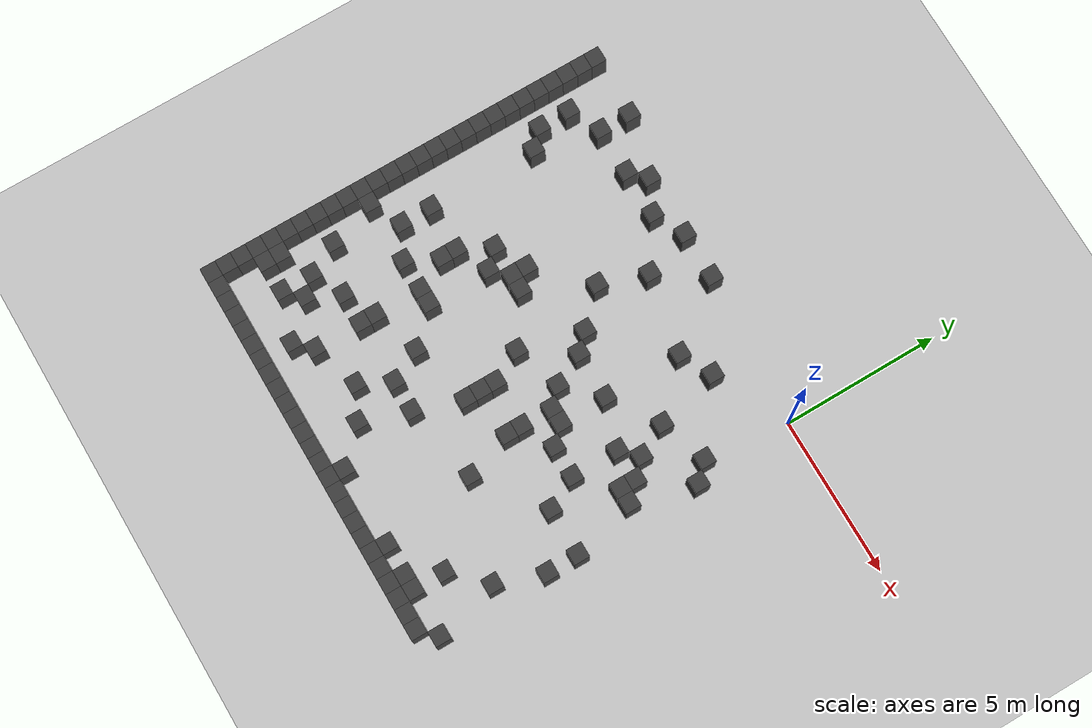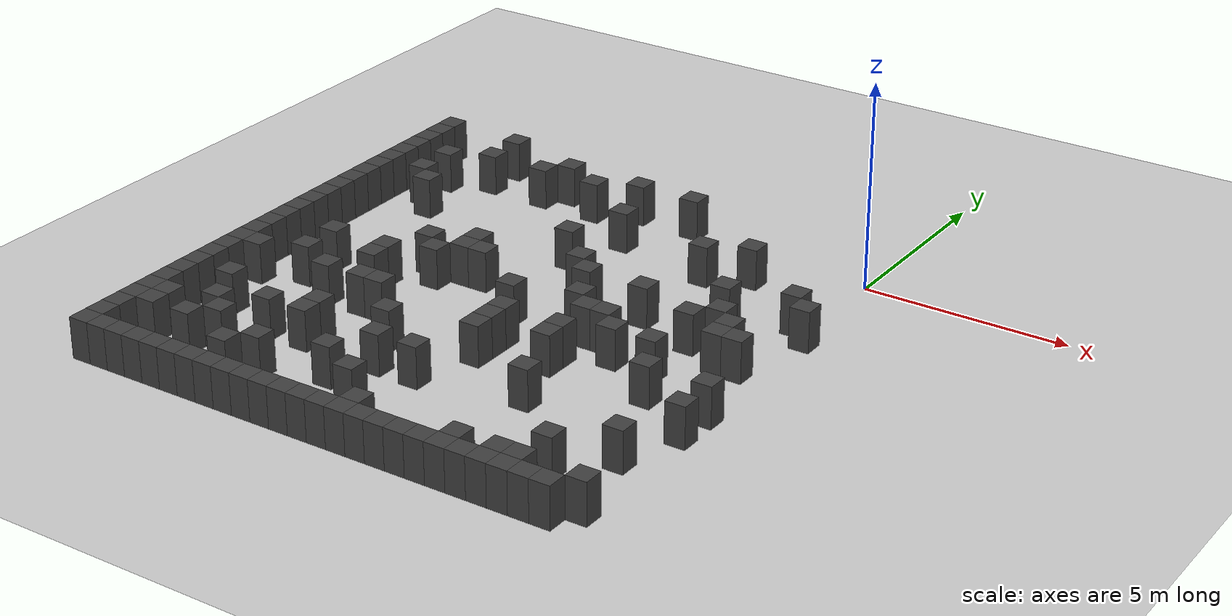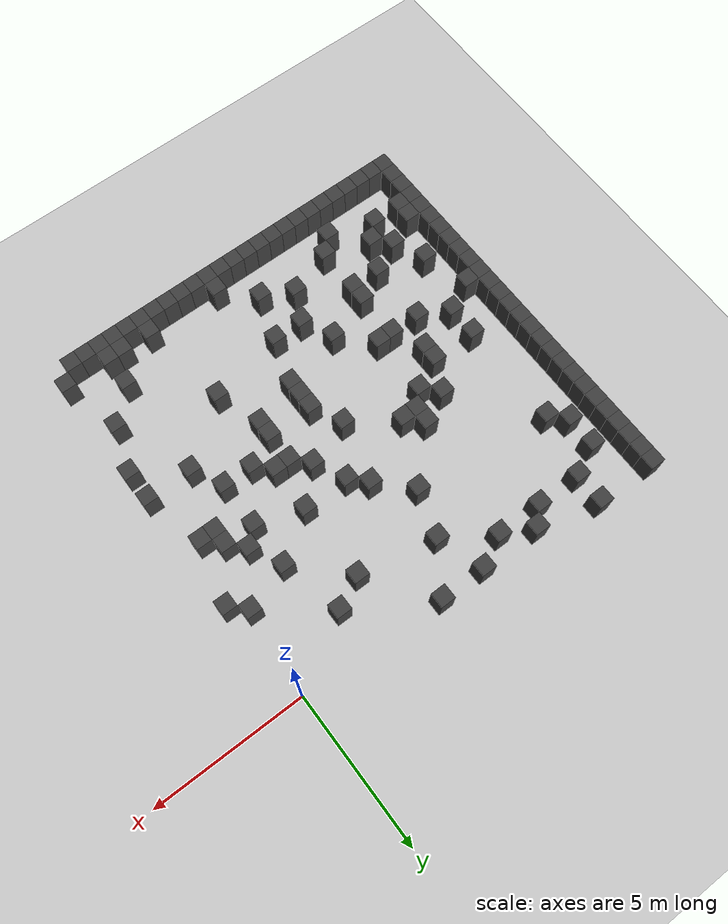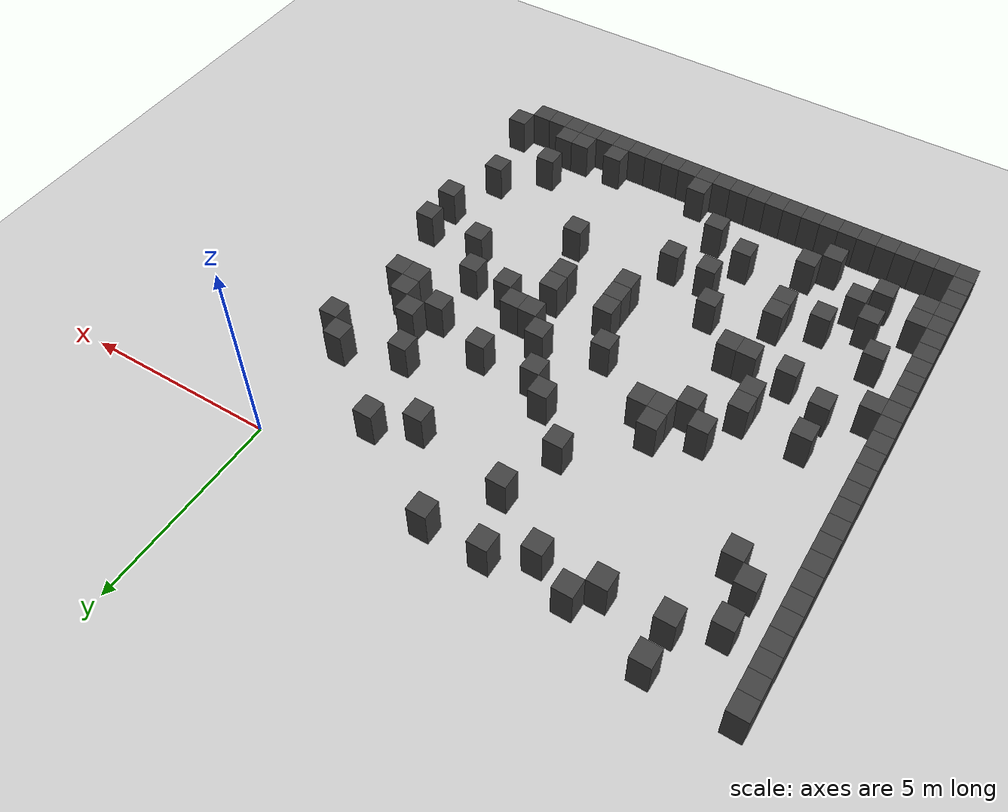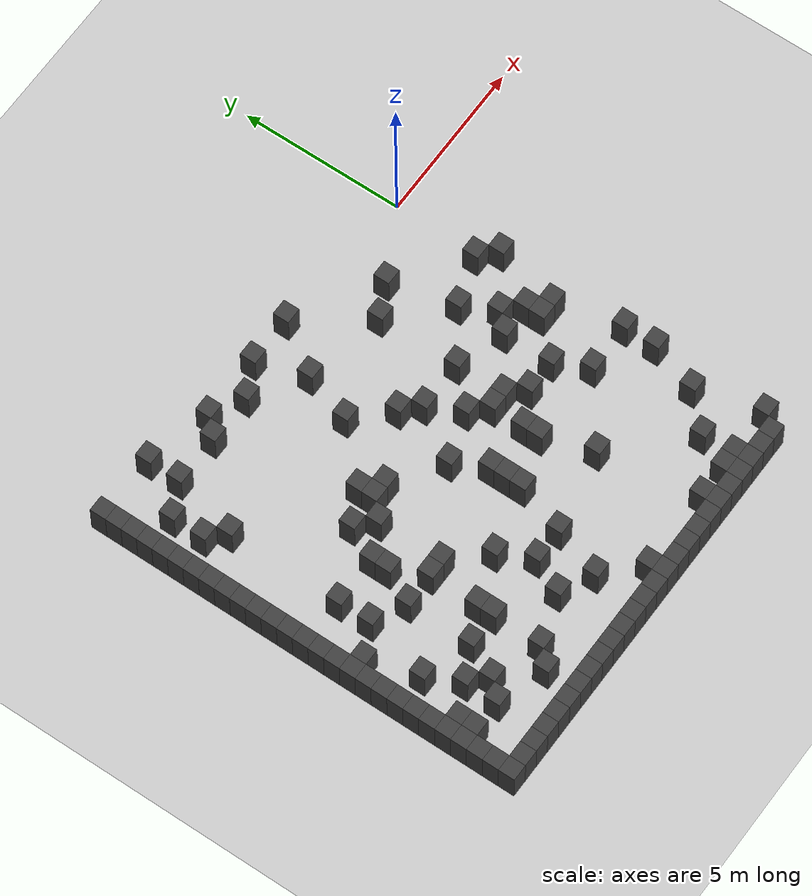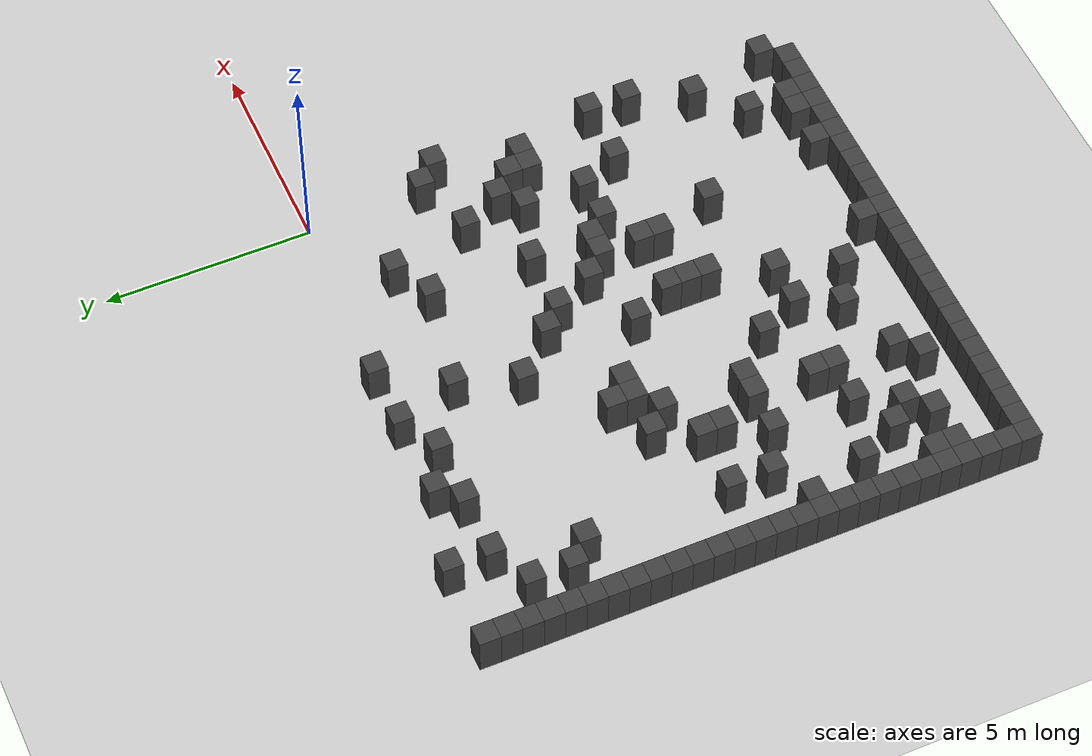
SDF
<sdf version="1.7">
 <world name="map_2627">
  <model name="ground_plane">
   <static>true</static>
   <link name="link">
    <collision name="collision">
     <geometry><plane><normal>0 0 1</normal><size>200 200</size></plane></geometry>
    </collision>
    <visual name="visual">
     <geometry><plane><normal>0 0 1</normal><size>200 200</size></plane></geometry>
     <material><ambient>0.8 0.8 0.8 1</ambient><diffuse>0.8 0.8 0.8 1</diffuse></material>
    </visual>
   </link>
  </model>
  <model name="maze_environment">
   <static>true</static>
   <link name="wall_245">
    <pose>-12.250 0.750 0.500 0 0 0</pose>
    <collision name="col"><geometry><box><size>0.5 0.5 1.0</size></box></geometry></collision>
    <visual name="vis">
     <geometry><box><size>0.5 0.5 1.0</size></box></geometry>
     <material><ambient>0.15 0.15 0.15 1</ambient><diffuse>0.25 0.25 0.25 1</diffuse></material>
    </visual>
   </link>
   <link name="wall_246">
    <pose>-10.250 0.750 0.500 0 0 0</pose>
    <collision name="col"><geometry><box><size>0.5 0.5 1.0</size></box></geometry></collision>
    <visual name="vis">
     <geometry><box><size>0.5 0.5 1.0</size></box></geometry>
     <material><ambient>0.15 0.15 0.15 1</ambient><diffuse>0.25 0.25 0.25 1</diffuse></material>
    </visual>
   </link>
   <link name="wall_258">
    <pose>-12.250 0.250 0.500 0 0 0</pose>
    <collision name="col"><geometry><box><size>0.5 0.5 1.0</size></box></geometry></collision>
    <visual name="vis">
     <geometry><box><size>0.5 0.5 1.0</size></box></geometry>
     <material><ambient>0.15 0.15 0.15 1</ambient><diffuse>0.25 0.25 0.25 1</diffuse></material>
    </visual>
   </link>
   <link name="wall_259">
    <pose>-8.250 0.250 0.500 0 0 0</pose>
    <collision name="col"><geometry><box><size>0.5 0.5 1.0</size></box></geometry></collision>
    <visual name="vis">
     <geometry><box><size>0.5 0.5 1.0</size></box></geometry>
     <material><ambient>0.15 0.15 0.15 1</ambient><diffuse>0.25 0.25 0.25 1</diffuse></material>
    </visual>
   </link>
   <link name="wall_260">
    <pose>-6.250 0.250 0.500 0 0 0</pose>
    <collision name="col"><geometry><box><size>0.5 0.5 1.0</size></box></geometry></collision>
    <visual name="vis">
     <geometry><box><size>0.5 0.5 1.0</size></box></geometry>
     <material><ambient>0.15 0.15 0.15 1</ambient><diffuse>0.25 0.25 0.25 1</diffuse></material>
    </visual>
   </link>
   <link name="wall_261">
    <pose>-4.750 0.250 0.500 0 0 0</pose>
    <collision name="col"><geometry><box><size>0.5 0.5 1.0</size></box></geometry></collision>
    <visual name="vis">
     <geometry><box><size>0.5 0.5 1.0</size></box></geometry>
     <material><ambient>0.15 0.15 0.15 1</ambient><diffuse>0.25 0.25 0.25 1</diffuse></material>
    </visual>
   </link>
   <link name="wall_266">
    <pose>-12.250 -0.250 0.500 0 0 0</pose>
    <collision name="col"><geometry><box><size>0.5 0.5 1.0</size></box></geometry></collision>
    <visual name="vis">
     <geometry><box><size>0.5 0.5 1.0</size></box></geometry>
     <material><ambient>0.15 0.15 0.15 1</ambient><diffuse>0.25 0.25 0.25 1</diffuse></material>
    </visual>
   </link>
   <link name="wall_267">
    <pose>-10.250 -0.250 0.500 0 0 0</pose>
    <collision name="col"><geometry><box><size>0.5 0.5 1.0</size></box></geometry></collision>
    <visual name="vis">
     <geometry><box><size>0.5 0.5 1.0</size></box></geometry>
     <material><ambient>0.15 0.15 0.15 1</ambient><diffuse>0.25 0.25 0.25 1</diffuse></material>
    </visual>
   </link>
   <link name="wall_268">
    <pose>-8.750 -0.250 0.500 0 0 0</pose>
    <collision name="col"><geometry><box><size>0.5 0.5 1.0</size></box></geometry></collision>
    <visual name="vis">
     <geometry><box><size>0.5 0.5 1.0</size></box></geometry>
     <material><ambient>0.15 0.15 0.15 1</ambient><diffuse>0.25 0.25 0.25 1</diffuse></material>
    </visual>
   </link>
   <link name="wall_269">
    <pose>-7.250 -0.250 0.500 0 0 0</pose>
    <collision name="col"><geometry><box><size>0.5 0.5 1.0</size></box></geometry></collision>
    <visual name="vis">
     <geometry><box><size>0.5 0.5 1.0</size></box></geometry>
     <material><ambient>0.15 0.15 0.15 1</ambient><diffuse>0.25 0.25 0.25 1</diffuse></material>
    </visual>
   </link>
   <link name="wall_274">
    <pose>-12.250 -0.750 0.500 0 0 0</pose>
    <collision name="col"><geometry><box><size>0.5 0.5 1.0</size></box></geometry></collision>
    <visual name="vis">
     <geometry><box><size>0.5 0.5 1.0</size></box></geometry>
     <material><ambient>0.15 0.15 0.15 1</ambient><diffuse>0.25 0.25 0.25 1</diffuse></material>
    </visual>
   </link>
   <link name="wall_275">
    <pose>-11.250 -0.750 0.500 0 0 0</pose>
    <collision name="col"><geometry><box><size>0.5 0.5 1.0</size></box></geometry></collision>
    <visual name="vis">
     <geometry><box><size>0.5 0.5 1.0</size></box></geometry>
     <material><ambient>0.15 0.15 0.15 1</ambient><diffuse>0.25 0.25 0.25 1</diffuse></material>
    </visual>
   </link>
   <link name="wall_279">
    <pose>-12.250 -1.250 0.500 0 0 0</pose>
    <collision name="col"><geometry><box><size>0.5 0.5 1.0</size></box></geometry></collision>
    <visual name="vis">
     <geometry><box><size>0.5 0.5 1.0</size></box></geometry>
     <material><ambient>0.15 0.15 0.15 1</ambient><diffuse>0.25 0.25 0.25 1</diffuse></material>
    </visual>
   </link>
   <link name="wall_280">
    <pose>-5.750 -1.250 0.500 0 0 0</pose>
    <collision name="col"><geometry><box><size>0.5 0.5 1.0</size></box></geometry></collision>
    <visual name="vis">
     <geometry><box><size>0.5 0.5 1.0</size></box></geometry>
     <material><ambient>0.15 0.15 0.15 1</ambient><diffuse>0.25 0.25 0.25 1</diffuse></material>
    </visual>
   </link>
   <link name="wall_281">
    <pose>-2.250 -1.250 0.500 0 0 0</pose>
    <collision name="col"><geometry><box><size>0.5 0.5 1.0</size></box></geometry></collision>
    <visual name="vis">
     <geometry><box><size>0.5 0.5 1.0</size></box></geometry>
     <material><ambient>0.15 0.15 0.15 1</ambient><diffuse>0.25 0.25 0.25 1</diffuse></material>
    </visual>
   </link>
   <link name="wall_287">
    <pose>-12.250 -1.750 0.500 0 0 0</pose>
    <collision name="col"><geometry><box><size>0.5 0.5 1.0</size></box></geometry></collision>
    <visual name="vis">
     <geometry><box><size>0.5 0.5 1.0</size></box></geometry>
     <material><ambient>0.15 0.15 0.15 1</ambient><diffuse>0.25 0.25 0.25 1</diffuse></material>
    </visual>
   </link>
   <link name="wall_288">
    <pose>-11.250 -1.750 0.500 0 0 0</pose>
    <collision name="col"><geometry><box><size>0.5 0.5 1.0</size></box></geometry></collision>
    <visual name="vis">
     <geometry><box><size>0.5 0.5 1.0</size></box></geometry>
     <material><ambient>0.15 0.15 0.15 1</ambient><diffuse>0.25 0.25 0.25 1</diffuse></material>
    </visual>
   </link>
   <link name="wall_289">
    <pose>-3.250 -1.750 0.500 0 0 0</pose>
    <collision name="col"><geometry><box><size>0.5 0.5 1.0</size></box></geometry></collision>
    <visual name="vis">
     <geometry><box><size>0.5 0.5 1.0</size></box></geometry>
     <material><ambient>0.15 0.15 0.15 1</ambient><diffuse>0.25 0.25 0.25 1</diffuse></material>
    </visual>
   </link>
   <link name="wall_294">
    <pose>-12.250 -2.250 0.500 0 0 0</pose>
    <collision name="col"><geometry><box><size>0.5 0.5 1.0</size></box></geometry></collision>
    <visual name="vis">
     <geometry><box><size>0.5 0.5 1.0</size></box></geometry>
     <material><ambient>0.15 0.15 0.15 1</ambient><diffuse>0.25 0.25 0.25 1</diffuse></material>
    </visual>
   </link>
   <link name="wall_295">
    <pose>-10.750 -2.250 0.500 0 0 0</pose>
    <collision name="col"><geometry><box><size>0.5 0.5 1.0</size></box></geometry></collision>
    <visual name="vis">
     <geometry><box><size>0.5 0.5 1.0</size></box></geometry>
     <material><ambient>0.15 0.15 0.15 1</ambient><diffuse>0.25 0.25 0.25 1</diffuse></material>
    </visual>
   </link>
   <link name="wall_301">
    <pose>-12.250 -2.750 0.500 0 0 0</pose>
    <collision name="col"><geometry><box><size>0.5 0.5 1.0</size></box></geometry></collision>
    <visual name="vis">
     <geometry><box><size>0.5 0.5 1.0</size></box></geometry>
     <material><ambient>0.15 0.15 0.15 1</ambient><diffuse>0.25 0.25 0.25 1</diffuse></material>
    </visual>
   </link>
   <link name="wall_302">
    <pose>-6.250 -2.750 0.500 0 0 0</pose>
    <collision name="col"><geometry><box><size>0.5 0.5 1.0</size></box></geometry></collision>
    <visual name="vis">
     <geometry><box><size>0.5 0.5 1.0</size></box></geometry>
     <material><ambient>0.15 0.15 0.15 1</ambient><diffuse>0.25 0.25 0.25 1</diffuse></material>
    </visual>
   </link>
   <link name="wall_303">
    <pose>-0.250 -2.750 0.500 0 0 0</pose>
    <collision name="col"><geometry><box><size>0.5 0.5 1.0</size></box></geometry></collision>
    <visual name="vis">
     <geometry><box><size>0.5 0.5 1.0</size></box></geometry>
     <material><ambient>0.15 0.15 0.15 1</ambient><diffuse>0.25 0.25 0.25 1</diffuse></material>
    </visual>
   </link>
   <link name="wall_307">
    <pose>-12.250 -3.250 0.500 0 0 0</pose>
    <collision name="col"><geometry><box><size>0.5 0.5 1.0</size></box></geometry></collision>
    <visual name="vis">
     <geometry><box><size>0.5 0.5 1.0</size></box></geometry>
     <material><ambient>0.15 0.15 0.15 1</ambient><diffuse>0.25 0.25 0.25 1</diffuse></material>
    </visual>
   </link>
   <link name="wall_308">
    <pose>-1.750 -3.250 0.500 0 0 0</pose>
    <collision name="col"><geometry><box><size>0.5 0.5 1.0</size></box></geometry></collision>
    <visual name="vis">
     <geometry><box><size>0.5 0.5 1.0</size></box></geometry>
     <material><ambient>0.15 0.15 0.15 1</ambient><diffuse>0.25 0.25 0.25 1</diffuse></material>
    </visual>
   </link>
   <link name="wall_309">
    <pose>0.250 -3.250 0.500 0 0 0</pose>
    <collision name="col"><geometry><box><size>0.5 0.5 1.0</size></box></geometry></collision>
    <visual name="vis">
     <geometry><box><size>0.5 0.5 1.0</size></box></geometry>
     <material><ambient>0.15 0.15 0.15 1</ambient><diffuse>0.25 0.25 0.25 1</diffuse></material>
    </visual>
   </link>
   <link name="wall_314">
    <pose>-12.250 -3.750 0.500 0 0 0</pose>
    <collision name="col"><geometry><box><size>0.5 0.5 1.0</size></box></geometry></collision>
    <visual name="vis">
     <geometry><box><size>0.5 0.5 1.0</size></box></geometry>
     <material><ambient>0.15 0.15 0.15 1</ambient><diffuse>0.25 0.25 0.25 1</diffuse></material>
    </visual>
   </link>
   <link name="wall_315">
    <pose>-5.250 -3.750 0.500 0 0 0</pose>
    <collision name="col"><geometry><box><size>0.5 0.5 1.0</size></box></geometry></collision>
    <visual name="vis">
     <geometry><box><size>0.5 0.5 1.0</size></box></geometry>
     <material><ambient>0.15 0.15 0.15 1</ambient><diffuse>0.25 0.25 0.25 1</diffuse></material>
    </visual>
   </link>
   <link name="wall_320">
    <pose>-12.250 -4.250 0.500 0 0 0</pose>
    <collision name="col"><geometry><box><size>0.5 0.5 1.0</size></box></geometry></collision>
    <visual name="vis">
     <geometry><box><size>0.5 0.5 1.0</size></box></geometry>
     <material><ambient>0.15 0.15 0.15 1</ambient><diffuse>0.25 0.25 0.25 1</diffuse></material>
    </visual>
   </link>
   <link name="wall_321">
    <pose>-7.750 -4.250 0.500 0 0 0</pose>
    <collision name="col"><geometry><box><size>0.5 0.5 1.0</size></box></geometry></collision>
    <visual name="vis">
     <geometry><box><size>0.5 0.5 1.0</size></box></geometry>
     <material><ambient>0.15 0.15 0.15 1</ambient><diffuse>0.25 0.25 0.25 1</diffuse></material>
    </visual>
   </link>
   <link name="wall_322">
    <pose>-4.750 -4.250 0.500 0 0 0</pose>
    <collision name="col"><geometry><box><size>0.5 0.5 1.0</size></box></geometry></collision>
    <visual name="vis">
     <geometry><box><size>0.5 0.5 1.0</size></box></geometry>
     <material><ambient>0.15 0.15 0.15 1</ambient><diffuse>0.25 0.25 0.25 1</diffuse></material>
    </visual>
   </link>
   <link name="wall_323">
    <pose>-3.250 -4.250 0.500 0 0 0</pose>
    <collision name="col"><geometry><box><size>0.5 0.5 1.0</size></box></geometry></collision>
    <visual name="vis">
     <geometry><box><size>0.5 0.5 1.0</size></box></geometry>
     <material><ambient>0.15 0.15 0.15 1</ambient><diffuse>0.25 0.25 0.25 1</diffuse></material>
    </visual>
   </link>
   <link name="wall_324">
    <pose>-1.250 -4.250 0.500 0 0 0</pose>
    <collision name="col"><geometry><box><size>0.5 0.5 1.0</size></box></geometry></collision>
    <visual name="vis">
     <geometry><box><size>0.5 0.5 1.0</size></box></geometry>
     <material><ambient>0.15 0.15 0.15 1</ambient><diffuse>0.25 0.25 0.25 1</diffuse></material>
    </visual>
   </link>
   <link name="wall_330">
    <pose>-12.250 -4.750 0.500 0 0 0</pose>
    <collision name="col"><geometry><box><size>0.5 0.5 1.0</size></box></geometry></collision>
    <visual name="vis">
     <geometry><box><size>0.5 0.5 1.0</size></box></geometry>
     <material><ambient>0.15 0.15 0.15 1</ambient><diffuse>0.25 0.25 0.25 1</diffuse></material>
    </visual>
   </link>
   <link name="wall_331">
    <pose>-8.750 -4.750 0.500 0 0 0</pose>
    <collision name="col"><geometry><box><size>0.5 0.5 1.0</size></box></geometry></collision>
    <visual name="vis">
     <geometry><box><size>0.5 0.5 1.0</size></box></geometry>
     <material><ambient>0.15 0.15 0.15 1</ambient><diffuse>0.25 0.25 0.25 1</diffuse></material>
    </visual>
   </link>
   <link name="wall_332">
    <pose>-7.750 -4.750 0.500 0 0 0</pose>
    <collision name="col"><geometry><box><size>0.5 0.5 1.0</size></box></geometry></collision>
    <visual name="vis">
     <geometry><box><size>0.5 0.5 1.0</size></box></geometry>
     <material><ambient>0.15 0.15 0.15 1</ambient><diffuse>0.25 0.25 0.25 1</diffuse></material>
    </visual>
   </link>
   <link name="wall_333">
    <pose>-7.250 -4.750 0.500 0 0 0</pose>
    <collision name="col"><geometry><box><size>0.5 0.5 1.0</size></box></geometry></collision>
    <visual name="vis">
     <geometry><box><size>0.5 0.5 1.0</size></box></geometry>
     <material><ambient>0.15 0.15 0.15 1</ambient><diffuse>0.25 0.25 0.25 1</diffuse></material>
    </visual>
   </link>
   <link name="wall_334">
    <pose>-1.750 -4.750 0.500 0 0 0</pose>
    <collision name="col"><geometry><box><size>0.5 0.5 1.0</size></box></geometry></collision>
    <visual name="vis">
     <geometry><box><size>0.5 0.5 1.0</size></box></geometry>
     <material><ambient>0.15 0.15 0.15 1</ambient><diffuse>0.25 0.25 0.25 1</diffuse></material>
    </visual>
   </link>
   <link name="wall_335">
    <pose>-0.750 -4.750 0.500 0 0 0</pose>
    <collision name="col"><geometry><box><size>0.5 0.5 1.0</size></box></geometry></collision>
    <visual name="vis">
     <geometry><box><size>0.5 0.5 1.0</size></box></geometry>
     <material><ambient>0.15 0.15 0.15 1</ambient><diffuse>0.25 0.25 0.25 1</diffuse></material>
    </visual>
   </link>
   <link name="wall_339">
    <pose>-12.250 -5.250 0.500 0 0 0</pose>
    <collision name="col"><geometry><box><size>0.5 0.5 1.0</size></box></geometry></collision>
    <visual name="vis">
     <geometry><box><size>0.5 0.5 1.0</size></box></geometry>
     <material><ambient>0.15 0.15 0.15 1</ambient><diffuse>0.25 0.25 0.25 1</diffuse></material>
    </visual>
   </link>
   <link name="wall_340">
    <pose>-8.250 -5.250 0.500 0 0 0</pose>
    <collision name="col"><geometry><box><size>0.5 0.5 1.0</size></box></geometry></collision>
    <visual name="vis">
     <geometry><box><size>0.5 0.5 1.0</size></box></geometry>
     <material><ambient>0.15 0.15 0.15 1</ambient><diffuse>0.25 0.25 0.25 1</diffuse></material>
    </visual>
   </link>
   <link name="wall_341">
    <pose>-4.250 -5.250 0.500 0 0 0</pose>
    <collision name="col"><geometry><box><size>0.5 0.5 1.0</size></box></geometry></collision>
    <visual name="vis">
     <geometry><box><size>0.5 0.5 1.0</size></box></geometry>
     <material><ambient>0.15 0.15 0.15 1</ambient><diffuse>0.25 0.25 0.25 1</diffuse></material>
    </visual>
   </link>
   <link name="wall_342">
    <pose>-0.750 -5.250 0.500 0 0 0</pose>
    <collision name="col"><geometry><box><size>0.5 0.5 1.0</size></box></geometry></collision>
    <visual name="vis">
     <geometry><box><size>0.5 0.5 1.0</size></box></geometry>
     <material><ambient>0.15 0.15 0.15 1</ambient><diffuse>0.25 0.25 0.25 1</diffuse></material>
    </visual>
   </link>
   <link name="wall_343">
    <pose>-0.250 -5.250 0.500 0 0 0</pose>
    <collision name="col"><geometry><box><size>0.5 0.5 1.0</size></box></geometry></collision>
    <visual name="vis">
     <geometry><box><size>0.5 0.5 1.0</size></box></geometry>
     <material><ambient>0.15 0.15 0.15 1</ambient><diffuse>0.25 0.25 0.25 1</diffuse></material>
    </visual>
   </link>
   <link name="wall_348">
    <pose>-12.250 -5.750 0.500 0 0 0</pose>
    <collision name="col"><geometry><box><size>0.5 0.5 1.0</size></box></geometry></collision>
    <visual name="vis">
     <geometry><box><size>0.5 0.5 1.0</size></box></geometry>
     <material><ambient>0.15 0.15 0.15 1</ambient><diffuse>0.25 0.25 0.25 1</diffuse></material>
    </visual>
   </link>
   <link name="wall_349">
    <pose>-10.750 -5.750 0.500 0 0 0</pose>
    <collision name="col"><geometry><box><size>0.5 0.5 1.0</size></box></geometry></collision>
    <visual name="vis">
     <geometry><box><size>0.5 0.5 1.0</size></box></geometry>
     <material><ambient>0.15 0.15 0.15 1</ambient><diffuse>0.25 0.25 0.25 1</diffuse></material>
    </visual>
   </link>
   <link name="wall_350">
    <pose>-9.250 -5.750 0.500 0 0 0</pose>
    <collision name="col"><geometry><box><size>0.5 0.5 1.0</size></box></geometry></collision>
    <visual name="vis">
     <geometry><box><size>0.5 0.5 1.0</size></box></geometry>
     <material><ambient>0.15 0.15 0.15 1</ambient><diffuse>0.25 0.25 0.25 1</diffuse></material>
    </visual>
   </link>
   <link name="wall_351">
    <pose>-5.750 -5.750 0.500 0 0 0</pose>
    <collision name="col"><geometry><box><size>0.5 0.5 1.0</size></box></geometry></collision>
    <visual name="vis">
     <geometry><box><size>0.5 0.5 1.0</size></box></geometry>
     <material><ambient>0.15 0.15 0.15 1</ambient><diffuse>0.25 0.25 0.25 1</diffuse></material>
    </visual>
   </link>
   <link name="wall_352">
    <pose>-3.750 -5.750 0.500 0 0 0</pose>
    <collision name="col"><geometry><box><size>0.5 0.5 1.0</size></box></geometry></collision>
    <visual name="vis">
     <geometry><box><size>0.5 0.5 1.0</size></box></geometry>
     <material><ambient>0.15 0.15 0.15 1</ambient><diffuse>0.25 0.25 0.25 1</diffuse></material>
    </visual>
   </link>
   <link name="wall_353">
    <pose>-3.250 -5.750 0.500 0 0 0</pose>
    <collision name="col"><geometry><box><size>0.5 0.5 1.0</size></box></geometry></collision>
    <visual name="vis">
     <geometry><box><size>0.5 0.5 1.0</size></box></geometry>
     <material><ambient>0.15 0.15 0.15 1</ambient><diffuse>0.25 0.25 0.25 1</diffuse></material>
    </visual>
   </link>
   <link name="wall_355">
    <pose>-12.250 -6.250 0.500 0 0 0</pose>
    <collision name="col"><geometry><box><size>0.5 0.5 1.0</size></box></geometry></collision>
    <visual name="vis">
     <geometry><box><size>0.5 0.5 1.0</size></box></geometry>
     <material><ambient>0.15 0.15 0.15 1</ambient><diffuse>0.25 0.25 0.25 1</diffuse></material>
    </visual>
   </link>
   <link name="wall_356">
    <pose>-9.250 -6.250 0.500 0 0 0</pose>
    <collision name="col"><geometry><box><size>0.5 0.5 1.0</size></box></geometry></collision>
    <visual name="vis">
     <geometry><box><size>0.5 0.5 1.0</size></box></geometry>
     <material><ambient>0.15 0.15 0.15 1</ambient><diffuse>0.25 0.25 0.25 1</diffuse></material>
    </visual>
   </link>
   <link name="wall_357">
    <pose>-2.750 -6.250 0.500 0 0 0</pose>
    <collision name="col"><geometry><box><size>0.5 0.5 1.0</size></box></geometry></collision>
    <visual name="vis">
     <geometry><box><size>0.5 0.5 1.0</size></box></geometry>
     <material><ambient>0.15 0.15 0.15 1</ambient><diffuse>0.25 0.25 0.25 1</diffuse></material>
    </visual>
   </link>
   <link name="wall_358">
    <pose>-1.750 -6.250 0.500 0 0 0</pose>
    <collision name="col"><geometry><box><size>0.5 0.5 1.0</size></box></geometry></collision>
    <visual name="vis">
     <geometry><box><size>0.5 0.5 1.0</size></box></geometry>
     <material><ambient>0.15 0.15 0.15 1</ambient><diffuse>0.25 0.25 0.25 1</diffuse></material>
    </visual>
   </link>
   <link name="wall_362">
    <pose>-12.250 -6.750 0.500 0 0 0</pose>
    <collision name="col"><geometry><box><size>0.5 0.5 1.0</size></box></geometry></collision>
    <visual name="vis">
     <geometry><box><size>0.5 0.5 1.0</size></box></geometry>
     <material><ambient>0.15 0.15 0.15 1</ambient><diffuse>0.25 0.25 0.25 1</diffuse></material>
    </visual>
   </link>
   <link name="wall_363">
    <pose>-10.750 -6.750 0.500 0 0 0</pose>
    <collision name="col"><geometry><box><size>0.5 0.5 1.0</size></box></geometry></collision>
    <visual name="vis">
     <geometry><box><size>0.5 0.5 1.0</size></box></geometry>
     <material><ambient>0.15 0.15 0.15 1</ambient><diffuse>0.25 0.25 0.25 1</diffuse></material>
    </visual>
   </link>
   <link name="wall_364">
    <pose>-5.250 -6.750 0.500 0 0 0</pose>
    <collision name="col"><geometry><box><size>0.5 0.5 1.0</size></box></geometry></collision>
    <visual name="vis">
     <geometry><box><size>0.5 0.5 1.0</size></box></geometry>
     <material><ambient>0.15 0.15 0.15 1</ambient><diffuse>0.25 0.25 0.25 1</diffuse></material>
    </visual>
   </link>
   <link name="wall_365">
    <pose>-3.750 -6.750 0.500 0 0 0</pose>
    <collision name="col"><geometry><box><size>0.5 0.5 1.0</size></box></geometry></collision>
    <visual name="vis">
     <geometry><box><size>0.5 0.5 1.0</size></box></geometry>
     <material><ambient>0.15 0.15 0.15 1</ambient><diffuse>0.25 0.25 0.25 1</diffuse></material>
    </visual>
   </link>
   <link name="wall_370">
    <pose>-12.250 -7.250 0.500 0 0 0</pose>
    <collision name="col"><geometry><box><size>0.5 0.5 1.0</size></box></geometry></collision>
    <visual name="vis">
     <geometry><box><size>0.5 0.5 1.0</size></box></geometry>
     <material><ambient>0.15 0.15 0.15 1</ambient><diffuse>0.25 0.25 0.25 1</diffuse></material>
    </visual>
   </link>
   <link name="wall_371">
    <pose>-11.750 -7.250 0.500 0 0 0</pose>
    <collision name="col"><geometry><box><size>0.5 0.5 1.0</size></box></geometry></collision>
    <visual name="vis">
     <geometry><box><size>0.5 0.5 1.0</size></box></geometry>
     <material><ambient>0.15 0.15 0.15 1</ambient><diffuse>0.25 0.25 0.25 1</diffuse></material>
    </visual>
   </link>
   <link name="wall_372">
    <pose>-9.750 -7.250 0.500 0 0 0</pose>
    <collision name="col"><geometry><box><size>0.5 0.5 1.0</size></box></geometry></collision>
    <visual name="vis">
     <geometry><box><size>0.5 0.5 1.0</size></box></geometry>
     <material><ambient>0.15 0.15 0.15 1</ambient><diffuse>0.25 0.25 0.25 1</diffuse></material>
    </visual>
   </link>
   <link name="wall_373">
    <pose>-8.750 -7.250 0.500 0 0 0</pose>
    <collision name="col"><geometry><box><size>0.5 0.5 1.0</size></box></geometry></collision>
    <visual name="vis">
     <geometry><box><size>0.5 0.5 1.0</size></box></geometry>
     <material><ambient>0.15 0.15 0.15 1</ambient><diffuse>0.25 0.25 0.25 1</diffuse></material>
    </visual>
   </link>
   <link name="wall_374">
    <pose>-8.250 -7.250 0.500 0 0 0</pose>
    <collision name="col"><geometry><box><size>0.5 0.5 1.0</size></box></geometry></collision>
    <visual name="vis">
     <geometry><box><size>0.5 0.5 1.0</size></box></geometry>
     <material><ambient>0.15 0.15 0.15 1</ambient><diffuse>0.25 0.25 0.25 1</diffuse></material>
    </visual>
   </link>
   <link name="wall_375">
    <pose>-5.250 -7.250 0.500 0 0 0</pose>
    <collision name="col"><geometry><box><size>0.5 0.5 1.0</size></box></geometry></collision>
    <visual name="vis">
     <geometry><box><size>0.5 0.5 1.0</size></box></geometry>
     <material><ambient>0.15 0.15 0.15 1</ambient><diffuse>0.25 0.25 0.25 1</diffuse></material>
    </visual>
   </link>
   <link name="wall_376">
    <pose>-3.750 -7.250 0.500 0 0 0</pose>
    <collision name="col"><geometry><box><size>0.5 0.5 1.0</size></box></geometry></collision>
    <visual name="vis">
     <geometry><box><size>0.5 0.5 1.0</size></box></geometry>
     <material><ambient>0.15 0.15 0.15 1</ambient><diffuse>0.25 0.25 0.25 1</diffuse></material>
    </visual>
   </link>
   <link name="wall_377">
    <pose>-1.250 -7.250 0.500 0 0 0</pose>
    <collision name="col"><geometry><box><size>0.5 0.5 1.0</size></box></geometry></collision>
    <visual name="vis">
     <geometry><box><size>0.5 0.5 1.0</size></box></geometry>
     <material><ambient>0.15 0.15 0.15 1</ambient><diffuse>0.25 0.25 0.25 1</diffuse></material>
    </visual>
   </link>
   <link name="wall_378">
    <pose>0.250 -7.250 0.500 0 0 0</pose>
    <collision name="col"><geometry><box><size>0.5 0.5 1.0</size></box></geometry></collision>
    <visual name="vis">
     <geometry><box><size>0.5 0.5 1.0</size></box></geometry>
     <material><ambient>0.15 0.15 0.15 1</ambient><diffuse>0.25 0.25 0.25 1</diffuse></material>
    </visual>
   </link>
   <link name="wall_382">
    <pose>-12.250 -7.750 0.500 0 0 0</pose>
    <collision name="col"><geometry><box><size>0.5 0.5 1.0</size></box></geometry></collision>
    <visual name="vis">
     <geometry><box><size>0.5 0.5 1.0</size></box></geometry>
     <material><ambient>0.15 0.15 0.15 1</ambient><diffuse>0.25 0.25 0.25 1</diffuse></material>
    </visual>
   </link>
   <link name="wall_383">
    <pose>-5.250 -7.750 0.500 0 0 0</pose>
    <collision name="col"><geometry><box><size>0.5 0.5 1.0</size></box></geometry></collision>
    <visual name="vis">
     <geometry><box><size>0.5 0.5 1.0</size></box></geometry>
     <material><ambient>0.15 0.15 0.15 1</ambient><diffuse>0.25 0.25 0.25 1</diffuse></material>
    </visual>
   </link>
   <link name="wall_389">
    <pose>-12.250 -8.250 0.500 0 0 0</pose>
    <collision name="col"><geometry><box><size>0.5 0.5 1.0</size></box></geometry></collision>
    <visual name="vis">
     <geometry><box><size>0.5 0.5 1.0</size></box></geometry>
     <material><ambient>0.15 0.15 0.15 1</ambient><diffuse>0.25 0.25 0.25 1</diffuse></material>
    </visual>
   </link>
   <link name="wall_390">
    <pose>-7.250 -8.250 0.500 0 0 0</pose>
    <collision name="col"><geometry><box><size>0.5 0.5 1.0</size></box></geometry></collision>
    <visual name="vis">
     <geometry><box><size>0.5 0.5 1.0</size></box></geometry>
     <material><ambient>0.15 0.15 0.15 1</ambient><diffuse>0.25 0.25 0.25 1</diffuse></material>
    </visual>
   </link>
   <link name="wall_391">
    <pose>0.250 -8.250 0.500 0 0 0</pose>
    <collision name="col"><geometry><box><size>0.5 0.5 1.0</size></box></geometry></collision>
    <visual name="vis">
     <geometry><box><size>0.5 0.5 1.0</size></box></geometry>
     <material><ambient>0.15 0.15 0.15 1</ambient><diffuse>0.25 0.25 0.25 1</diffuse></material>
    </visual>
   </link>
   <link name="wall_397">
    <pose>-12.250 -8.750 0.500 0 0 0</pose>
    <collision name="col"><geometry><box><size>0.5 0.5 1.0</size></box></geometry></collision>
    <visual name="vis">
     <geometry><box><size>0.5 0.5 1.0</size></box></geometry>
     <material><ambient>0.15 0.15 0.15 1</ambient><diffuse>0.25 0.25 0.25 1</diffuse></material>
    </visual>
   </link>
   <link name="wall_398">
    <pose>-11.250 -8.750 0.500 0 0 0</pose>
    <collision name="col"><geometry><box><size>0.5 0.5 1.0</size></box></geometry></collision>
    <visual name="vis">
     <geometry><box><size>0.5 0.5 1.0</size></box></geometry>
     <material><ambient>0.15 0.15 0.15 1</ambient><diffuse>0.25 0.25 0.25 1</diffuse></material>
    </visual>
   </link>
   <link name="wall_399">
    <pose>-8.750 -8.750 0.500 0 0 0</pose>
    <collision name="col"><geometry><box><size>0.5 0.5 1.0</size></box></geometry></collision>
    <visual name="vis">
     <geometry><box><size>0.5 0.5 1.0</size></box></geometry>
     <material><ambient>0.15 0.15 0.15 1</ambient><diffuse>0.25 0.25 0.25 1</diffuse></material>
    </visual>
   </link>
   <link name="wall_400">
    <pose>-3.250 -8.750 0.500 0 0 0</pose>
    <collision name="col"><geometry><box><size>0.5 0.5 1.0</size></box></geometry></collision>
    <visual name="vis">
     <geometry><box><size>0.5 0.5 1.0</size></box></geometry>
     <material><ambient>0.15 0.15 0.15 1</ambient><diffuse>0.25 0.25 0.25 1</diffuse></material>
    </visual>
   </link>
   <link name="wall_407">
    <pose>-12.250 -9.250 0.500 0 0 0</pose>
    <collision name="col"><geometry><box><size>0.5 0.5 1.0</size></box></geometry></collision>
    <visual name="vis">
     <geometry><box><size>0.5 0.5 1.0</size></box></geometry>
     <material><ambient>0.15 0.15 0.15 1</ambient><diffuse>0.25 0.25 0.25 1</diffuse></material>
    </visual>
   </link>
   <link name="wall_408">
    <pose>-9.750 -9.250 0.500 0 0 0</pose>
    <collision name="col"><geometry><box><size>0.5 0.5 1.0</size></box></geometry></collision>
    <visual name="vis">
     <geometry><box><size>0.5 0.5 1.0</size></box></geometry>
     <material><ambient>0.15 0.15 0.15 1</ambient><diffuse>0.25 0.25 0.25 1</diffuse></material>
    </visual>
   </link>
   <link name="wall_409">
    <pose>-8.750 -9.250 0.500 0 0 0</pose>
    <collision name="col"><geometry><box><size>0.5 0.5 1.0</size></box></geometry></collision>
    <visual name="vis">
     <geometry><box><size>0.5 0.5 1.0</size></box></geometry>
     <material><ambient>0.15 0.15 0.15 1</ambient><diffuse>0.25 0.25 0.25 1</diffuse></material>
    </visual>
   </link>
   <link name="wall_410">
    <pose>-6.750 -9.250 0.500 0 0 0</pose>
    <collision name="col"><geometry><box><size>0.5 0.5 1.0</size></box></geometry></collision>
    <visual name="vis">
     <geometry><box><size>0.5 0.5 1.0</size></box></geometry>
     <material><ambient>0.15 0.15 0.15 1</ambient><diffuse>0.25 0.25 0.25 1</diffuse></material>
    </visual>
   </link>
   <link name="wall_411">
    <pose>-5.750 -9.250 0.500 0 0 0</pose>
    <collision name="col"><geometry><box><size>0.5 0.5 1.0</size></box></geometry></collision>
    <visual name="vis">
     <geometry><box><size>0.5 0.5 1.0</size></box></geometry>
     <material><ambient>0.15 0.15 0.15 1</ambient><diffuse>0.25 0.25 0.25 1</diffuse></material>
    </visual>
   </link>
   <link name="wall_414">
    <pose>-12.250 -9.750 0.500 0 0 0</pose>
    <collision name="col"><geometry><box><size>0.5 0.5 1.0</size></box></geometry></collision>
    <visual name="vis">
     <geometry><box><size>0.5 0.5 1.0</size></box></geometry>
     <material><ambient>0.15 0.15 0.15 1</ambient><diffuse>0.25 0.25 0.25 1</diffuse></material>
    </visual>
   </link>
   <link name="wall_415">
    <pose>-10.750 -9.750 0.500 0 0 0</pose>
    <collision name="col"><geometry><box><size>0.5 0.5 1.0</size></box></geometry></collision>
    <visual name="vis">
     <geometry><box><size>0.5 0.5 1.0</size></box></geometry>
     <material><ambient>0.15 0.15 0.15 1</ambient><diffuse>0.25 0.25 0.25 1</diffuse></material>
    </visual>
   </link>
   <link name="wall_416">
    <pose>-0.250 -9.750 0.500 0 0 0</pose>
    <collision name="col"><geometry><box><size>0.5 0.5 1.0</size></box></geometry></collision>
    <visual name="vis">
     <geometry><box><size>0.5 0.5 1.0</size></box></geometry>
     <material><ambient>0.15 0.15 0.15 1</ambient><diffuse>0.25 0.25 0.25 1</diffuse></material>
    </visual>
   </link>
   <link name="wall_418">
    <pose>-12.250 -10.250 0.500 0 0 0</pose>
    <collision name="col"><geometry><box><size>0.5 0.5 1.0</size></box></geometry></collision>
    <visual name="vis">
     <geometry><box><size>0.5 0.5 1.0</size></box></geometry>
     <material><ambient>0.15 0.15 0.15 1</ambient><diffuse>0.25 0.25 0.25 1</diffuse></material>
    </visual>
   </link>
   <link name="wall_419">
    <pose>-11.750 -10.250 0.500 0 0 0</pose>
    <collision name="col"><geometry><box><size>0.5 0.5 1.0</size></box></geometry></collision>
    <visual name="vis">
     <geometry><box><size>0.5 0.5 1.0</size></box></geometry>
     <material><ambient>0.15 0.15 0.15 1</ambient><diffuse>0.25 0.25 0.25 1</diffuse></material>
    </visual>
   </link>
   <link name="wall_420">
    <pose>-10.250 -10.250 0.500 0 0 0</pose>
    <collision name="col"><geometry><box><size>0.5 0.5 1.0</size></box></geometry></collision>
    <visual name="vis">
     <geometry><box><size>0.5 0.5 1.0</size></box></geometry>
     <material><ambient>0.15 0.15 0.15 1</ambient><diffuse>0.25 0.25 0.25 1</diffuse></material>
    </visual>
   </link>
   <link name="wall_421">
    <pose>-7.250 -10.250 0.500 0 0 0</pose>
    <collision name="col"><geometry><box><size>0.5 0.5 1.0</size></box></geometry></collision>
    <visual name="vis">
     <geometry><box><size>0.5 0.5 1.0</size></box></geometry>
     <material><ambient>0.15 0.15 0.15 1</ambient><diffuse>0.25 0.25 0.25 1</diffuse></material>
    </visual>
   </link>
   <link name="wall_428">
    <pose>-12.250 -10.750 0.500 0 0 0</pose>
    <collision name="col"><geometry><box><size>0.5 0.5 1.0</size></box></geometry></collision>
    <visual name="vis">
     <geometry><box><size>0.5 0.5 1.0</size></box></geometry>
     <material><ambient>0.15 0.15 0.15 1</ambient><diffuse>0.25 0.25 0.25 1</diffuse></material>
    </visual>
   </link>
   <link name="wall_429">
    <pose>-11.750 -10.750 0.500 0 0 0</pose>
    <collision name="col"><geometry><box><size>0.5 0.5 1.0</size></box></geometry></collision>
    <visual name="vis">
     <geometry><box><size>0.5 0.5 1.0</size></box></geometry>
     <material><ambient>0.15 0.15 0.15 1</ambient><diffuse>0.25 0.25 0.25 1</diffuse></material>
    </visual>
   </link>
   <link name="wall_430">
    <pose>-10.750 -10.750 0.500 0 0 0</pose>
    <collision name="col"><geometry><box><size>0.5 0.5 1.0</size></box></geometry></collision>
    <visual name="vis">
     <geometry><box><size>0.5 0.5 1.0</size></box></geometry>
     <material><ambient>0.15 0.15 0.15 1</ambient><diffuse>0.25 0.25 0.25 1</diffuse></material>
    </visual>
   </link>
   <link name="wall_431">
    <pose>-8.750 -10.750 0.500 0 0 0</pose>
    <collision name="col"><geometry><box><size>0.5 0.5 1.0</size></box></geometry></collision>
    <visual name="vis">
     <geometry><box><size>0.5 0.5 1.0</size></box></geometry>
     <material><ambient>0.15 0.15 0.15 1</ambient><diffuse>0.25 0.25 0.25 1</diffuse></material>
    </visual>
   </link>
   <link name="wall_432">
    <pose>-6.250 -10.750 0.500 0 0 0</pose>
    <collision name="col"><geometry><box><size>0.5 0.5 1.0</size></box></geometry></collision>
    <visual name="vis">
     <geometry><box><size>0.5 0.5 1.0</size></box></geometry>
     <material><ambient>0.15 0.15 0.15 1</ambient><diffuse>0.25 0.25 0.25 1</diffuse></material>
    </visual>
   </link>
   <link name="wall_433">
    <pose>-1.250 -10.750 0.500 0 0 0</pose>
    <collision name="col"><geometry><box><size>0.5 0.5 1.0</size></box></geometry></collision>
    <visual name="vis">
     <geometry><box><size>0.5 0.5 1.0</size></box></geometry>
     <material><ambient>0.15 0.15 0.15 1</ambient><diffuse>0.25 0.25 0.25 1</diffuse></material>
    </visual>
   </link>
   <link name="wall_440">
    <pose>-12.250 -11.250 0.500 0 0 0</pose>
    <collision name="col"><geometry><box><size>0.5 0.5 1.0</size></box></geometry></collision>
    <visual name="vis">
     <geometry><box><size>0.5 0.5 1.0</size></box></geometry>
     <material><ambient>0.15 0.15 0.15 1</ambient><diffuse>0.25 0.25 0.25 1</diffuse></material>
    </visual>
   </link>
   <link name="wall_441">
    <pose>-9.250 -11.250 0.500 0 0 0</pose>
    <collision name="col"><geometry><box><size>0.5 0.5 1.0</size></box></geometry></collision>
    <visual name="vis">
     <geometry><box><size>0.5 0.5 1.0</size></box></geometry>
     <material><ambient>0.15 0.15 0.15 1</ambient><diffuse>0.25 0.25 0.25 1</diffuse></material>
    </visual>
   </link>
   <link name="wall_445">
    <pose>-12.250 -11.750 0.500 0 0 0</pose>
    <collision name="col"><geometry><box><size>0.5 0.5 1.0</size></box></geometry></collision>
    <visual name="vis">
     <geometry><box><size>0.5 0.5 1.0</size></box></geometry>
     <material><ambient>0.15 0.15 0.15 1</ambient><diffuse>0.25 0.25 0.25 1</diffuse></material>
    </visual>
   </link>
   <link name="wall_446">
    <pose>-5.250 -11.750 0.500 0 0 0</pose>
    <collision name="col"><geometry><box><size>0.5 0.5 1.0</size></box></geometry></collision>
    <visual name="vis">
     <geometry><box><size>0.5 0.5 1.0</size></box></geometry>
     <material><ambient>0.15 0.15 0.15 1</ambient><diffuse>0.25 0.25 0.25 1</diffuse></material>
    </visual>
   </link>
   <link name="wall_447">
    <pose>-2.750 -11.750 0.500 0 0 0</pose>
    <collision name="col"><geometry><box><size>0.5 0.5 1.0</size></box></geometry></collision>
    <visual name="vis">
     <geometry><box><size>0.5 0.5 1.0</size></box></geometry>
     <material><ambient>0.15 0.15 0.15 1</ambient><diffuse>0.25 0.25 0.25 1</diffuse></material>
    </visual>
   </link>
   <link name="wall_448">
    <pose>-1.750 -11.750 0.500 0 0 0</pose>
    <collision name="col"><geometry><box><size>0.5 0.5 1.0</size></box></geometry></collision>
    <visual name="vis">
     <geometry><box><size>0.5 0.5 1.0</size></box></geometry>
     <material><ambient>0.15 0.15 0.15 1</ambient><diffuse>0.25 0.25 0.25 1</diffuse></material>
    </visual>
   </link>
   <link name="wall_449">
    <pose>-1.250 -11.750 0.500 0 0 0</pose>
    <collision name="col"><geometry><box><size>0.5 0.5 1.0</size></box></geometry></collision>
    <visual name="vis">
     <geometry><box><size>0.5 0.5 1.0</size></box></geometry>
     <material><ambient>0.15 0.15 0.15 1</ambient><diffuse>0.25 0.25 0.25 1</diffuse></material>
    </visual>
   </link>
   <link name="wall_450">
    <pose>0.250 -11.750 0.500 0 0 0</pose>
    <collision name="col"><geometry><box><size>0.5 0.5 1.0</size></box></geometry></collision>
    <visual name="vis">
     <geometry><box><size>0.5 0.5 1.0</size></box></geometry>
     <material><ambient>0.15 0.15 0.15 1</ambient><diffuse>0.25 0.25 0.25 1</diffuse></material>
    </visual>
   </link>
   <link name="wall_456">
    <pose>-12.250 -12.250 0.500 0 0 0</pose>
    <collision name="col"><geometry><box><size>0.5 0.5 1.0</size></box></geometry></collision>
    <visual name="vis">
     <geometry><box><size>0.5 0.5 1.0</size></box></geometry>
     <material><ambient>0.15 0.15 0.15 1</ambient><diffuse>0.25 0.25 0.25 1</diffuse></material>
    </visual>
   </link>
   <link name="wall_457">
    <pose>-11.750 -12.250 0.500 0 0 0</pose>
    <collision name="col"><geometry><box><size>0.5 0.5 1.0</size></box></geometry></collision>
    <visual name="vis">
     <geometry><box><size>0.5 0.5 1.0</size></box></geometry>
     <material><ambient>0.15 0.15 0.15 1</ambient><diffuse>0.25 0.25 0.25 1</diffuse></material>
    </visual>
   </link>
   <link name="wall_458">
    <pose>-11.250 -12.250 0.500 0 0 0</pose>
    <collision name="col"><geometry><box><size>0.5 0.5 1.0</size></box></geometry></collision>
    <visual name="vis">
     <geometry><box><size>0.5 0.5 1.0</size></box></geometry>
     <material><ambient>0.15 0.15 0.15 1</ambient><diffuse>0.25 0.25 0.25 1</diffuse></material>
    </visual>
   </link>
   <link name="wall_459">
    <pose>-10.750 -12.250 0.500 0 0 0</pose>
    <collision name="col"><geometry><box><size>0.5 0.5 1.0</size></box></geometry></collision>
    <visual name="vis">
     <geometry><box><size>0.5 0.5 1.0</size></box></geometry>
     <material><ambient>0.15 0.15 0.15 1</ambient><diffuse>0.25 0.25 0.25 1</diffuse></material>
    </visual>
   </link>
   <link name="wall_460">
    <pose>-10.250 -12.250 0.500 0 0 0</pose>
    <collision name="col"><geometry><box><size>0.5 0.5 1.0</size></box></geometry></collision>
    <visual name="vis">
     <geometry><box><size>0.5 0.5 1.0</size></box></geometry>
     <material><ambient>0.15 0.15 0.15 1</ambient><diffuse>0.25 0.25 0.25 1</diffuse></material>
    </visual>
   </link>
   <link name="wall_461">
    <pose>-9.750 -12.250 0.500 0 0 0</pose>
    <collision name="col"><geometry><box><size>0.5 0.5 1.0</size></box></geometry></collision>
    <visual name="vis">
     <geometry><box><size>0.5 0.5 1.0</size></box></geometry>
     <material><ambient>0.15 0.15 0.15 1</ambient><diffuse>0.25 0.25 0.25 1</diffuse></material>
    </visual>
   </link>
   <link name="wall_462">
    <pose>-9.250 -12.250 0.500 0 0 0</pose>
    <collision name="col"><geometry><box><size>0.5 0.5 1.0</size></box></geometry></collision>
    <visual name="vis">
     <geometry><box><size>0.5 0.5 1.0</size></box></geometry>
     <material><ambient>0.15 0.15 0.15 1</ambient><diffuse>0.25 0.25 0.25 1</diffuse></material>
    </visual>
   </link>
   <link name="wall_463">
    <pose>-8.750 -12.250 0.500 0 0 0</pose>
    <collision name="col"><geometry><box><size>0.5 0.5 1.0</size></box></geometry></collision>
    <visual name="vis">
     <geometry><box><size>0.5 0.5 1.0</size></box></geometry>
     <material><ambient>0.15 0.15 0.15 1</ambient><diffuse>0.25 0.25 0.25 1</diffuse></material>
    </visual>
   </link>
   <link name="wall_464">
    <pose>-8.250 -12.250 0.500 0 0 0</pose>
    <collision name="col"><geometry><box><size>0.5 0.5 1.0</size></box></geometry></collision>
    <visual name="vis">
     <geometry><box><size>0.5 0.5 1.0</size></box></geometry>
     <material><ambient>0.15 0.15 0.15 1</ambient><diffuse>0.25 0.25 0.25 1</diffuse></material>
    </visual>
   </link>
   <link name="wall_465">
    <pose>-7.750 -12.250 0.500 0 0 0</pose>
    <collision name="col"><geometry><box><size>0.5 0.5 1.0</size></box></geometry></collision>
    <visual name="vis">
     <geometry><box><size>0.5 0.5 1.0</size></box></geometry>
     <material><ambient>0.15 0.15 0.15 1</ambient><diffuse>0.25 0.25 0.25 1</diffuse></material>
    </visual>
   </link>
   <link name="wall_466">
    <pose>-7.250 -12.250 0.500 0 0 0</pose>
    <collision name="col"><geometry><box><size>0.5 0.5 1.0</size></box></geometry></collision>
    <visual name="vis">
     <geometry><box><size>0.5 0.5 1.0</size></box></geometry>
     <material><ambient>0.15 0.15 0.15 1</ambient><diffuse>0.25 0.25 0.25 1</diffuse></material>
    </visual>
   </link>
   <link name="wall_467">
    <pose>-6.750 -12.250 0.500 0 0 0</pose>
    <collision name="col"><geometry><box><size>0.5 0.5 1.0</size></box></geometry></collision>
    <visual name="vis">
     <geometry><box><size>0.5 0.5 1.0</size></box></geometry>
     <material><ambient>0.15 0.15 0.15 1</ambient><diffuse>0.25 0.25 0.25 1</diffuse></material>
    </visual>
   </link>
   <link name="wall_468">
    <pose>-6.250 -12.250 0.500 0 0 0</pose>
    <collision name="col"><geometry><box><size>0.5 0.5 1.0</size></box></geometry></collision>
    <visual name="vis">
     <geometry><box><size>0.5 0.5 1.0</size></box></geometry>
     <material><ambient>0.15 0.15 0.15 1</ambient><diffuse>0.25 0.25 0.25 1</diffuse></material>
    </visual>
   </link>
   <link name="wall_469">
    <pose>-5.750 -12.250 0.500 0 0 0</pose>
    <collision name="col"><geometry><box><size>0.5 0.5 1.0</size></box></geometry></collision>
    <visual name="vis">
     <geometry><box><size>0.5 0.5 1.0</size></box></geometry>
     <material><ambient>0.15 0.15 0.15 1</ambient><diffuse>0.25 0.25 0.25 1</diffuse></material>
    </visual>
   </link>
   <link name="wall_470">
    <pose>-5.250 -12.250 0.500 0 0 0</pose>
    <collision name="col"><geometry><box><size>0.5 0.5 1.0</size></box></geometry></collision>
    <visual name="vis">
     <geometry><box><size>0.5 0.5 1.0</size></box></geometry>
     <material><ambient>0.15 0.15 0.15 1</ambient><diffuse>0.25 0.25 0.25 1</diffuse></material>
    </visual>
   </link>
   <link name="wall_471">
    <pose>-4.750 -12.250 0.500 0 0 0</pose>
    <collision name="col"><geometry><box><size>0.5 0.5 1.0</size></box></geometry></collision>
    <visual name="vis">
     <geometry><box><size>0.5 0.5 1.0</size></box></geometry>
     <material><ambient>0.15 0.15 0.15 1</ambient><diffuse>0.25 0.25 0.25 1</diffuse></material>
    </visual>
   </link>
   <link name="wall_472">
    <pose>-4.250 -12.250 0.500 0 0 0</pose>
    <collision name="col"><geometry><box><size>0.5 0.5 1.0</size></box></geometry></collision>
    <visual name="vis">
     <geometry><box><size>0.5 0.5 1.0</size></box></geometry>
     <material><ambient>0.15 0.15 0.15 1</ambient><diffuse>0.25 0.25 0.25 1</diffuse></material>
    </visual>
   </link>
   <link name="wall_473">
    <pose>-3.750 -12.250 0.500 0 0 0</pose>
    <collision name="col"><geometry><box><size>0.5 0.5 1.0</size></box></geometry></collision>
    <visual name="vis">
     <geometry><box><size>0.5 0.5 1.0</size></box></geometry>
     <material><ambient>0.15 0.15 0.15 1</ambient><diffuse>0.25 0.25 0.25 1</diffuse></material>
    </visual>
   </link>
   <link name="wall_474">
    <pose>-3.250 -12.250 0.500 0 0 0</pose>
    <collision name="col"><geometry><box><size>0.5 0.5 1.0</size></box></geometry></collision>
    <visual name="vis">
     <geometry><box><size>0.5 0.5 1.0</size></box></geometry>
     <material><ambient>0.15 0.15 0.15 1</ambient><diffuse>0.25 0.25 0.25 1</diffuse></material>
    </visual>
   </link>
   <link name="wall_475">
    <pose>-2.750 -12.250 0.500 0 0 0</pose>
    <collision name="col"><geometry><box><size>0.5 0.5 1.0</size></box></geometry></collision>
    <visual name="vis">
     <geometry><box><size>0.5 0.5 1.0</size></box></geometry>
     <material><ambient>0.15 0.15 0.15 1</ambient><diffuse>0.25 0.25 0.25 1</diffuse></material>
    </visual>
   </link>
   <link name="wall_476">
    <pose>-2.250 -12.250 0.500 0 0 0</pose>
    <collision name="col"><geometry><box><size>0.5 0.5 1.0</size></box></geometry></collision>
    <visual name="vis">
     <geometry><box><size>0.5 0.5 1.0</size></box></geometry>
     <material><ambient>0.15 0.15 0.15 1</ambient><diffuse>0.25 0.25 0.25 1</diffuse></material>
    </visual>
   </link>
   <link name="wall_477">
    <pose>-1.750 -12.250 0.500 0 0 0</pose>
    <collision name="col"><geometry><box><size>0.5 0.5 1.0</size></box></geometry></collision>
    <visual name="vis">
     <geometry><box><size>0.5 0.5 1.0</size></box></geometry>
     <material><ambient>0.15 0.15 0.15 1</ambient><diffuse>0.25 0.25 0.25 1</diffuse></material>
    </visual>
   </link>
   <link name="wall_478">
    <pose>-1.250 -12.250 0.500 0 0 0</pose>
    <collision name="col"><geometry><box><size>0.5 0.5 1.0</size></box></geometry></collision>
    <visual name="vis">
     <geometry><box><size>0.5 0.5 1.0</size></box></geometry>
     <material><ambient>0.15 0.15 0.15 1</ambient><diffuse>0.25 0.25 0.25 1</diffuse></material>
    </visual>
   </link>
   <link name="wall_479">
    <pose>-0.750 -12.250 0.500 0 0 0</pose>
    <collision name="col"><geometry><box><size>0.5 0.5 1.0</size></box></geometry></collision>
    <visual name="vis">
     <geometry><box><size>0.5 0.5 1.0</size></box></geometry>
     <material><ambient>0.15 0.15 0.15 1</ambient><diffuse>0.25 0.25 0.25 1</diffuse></material>
    </visual>
   </link>
   <link name="wall_480">
    <pose>-0.250 -12.250 0.500 0 0 0</pose>
    <collision name="col"><geometry><box><size>0.5 0.5 1.0</size></box></geometry></collision>
    <visual name="vis">
     <geometry><box><size>0.5 0.5 1.0</size></box></geometry>
     <material><ambient>0.15 0.15 0.15 1</ambient><diffuse>0.25 0.25 0.25 1</diffuse></material>
    </visual>
   </link>
  </model>
 </world>
</sdf>
